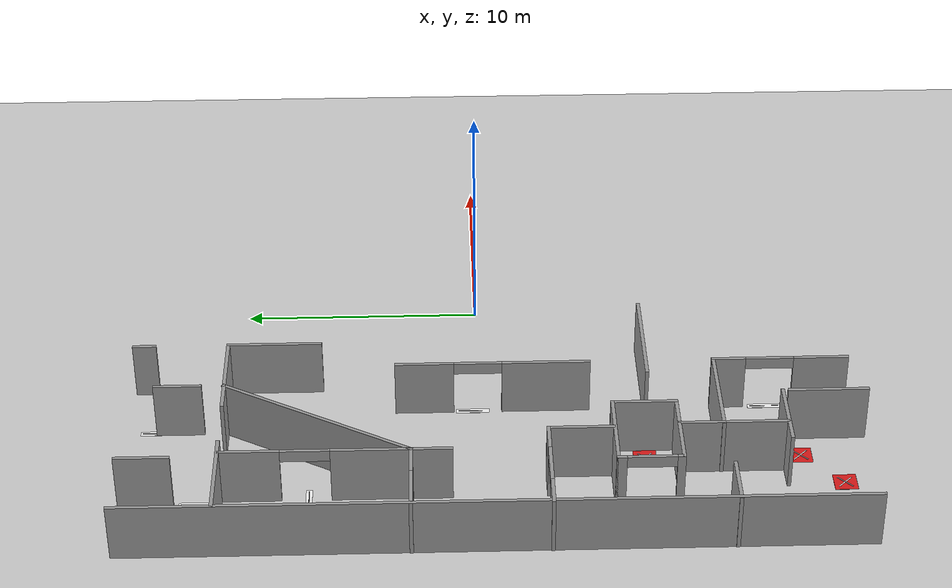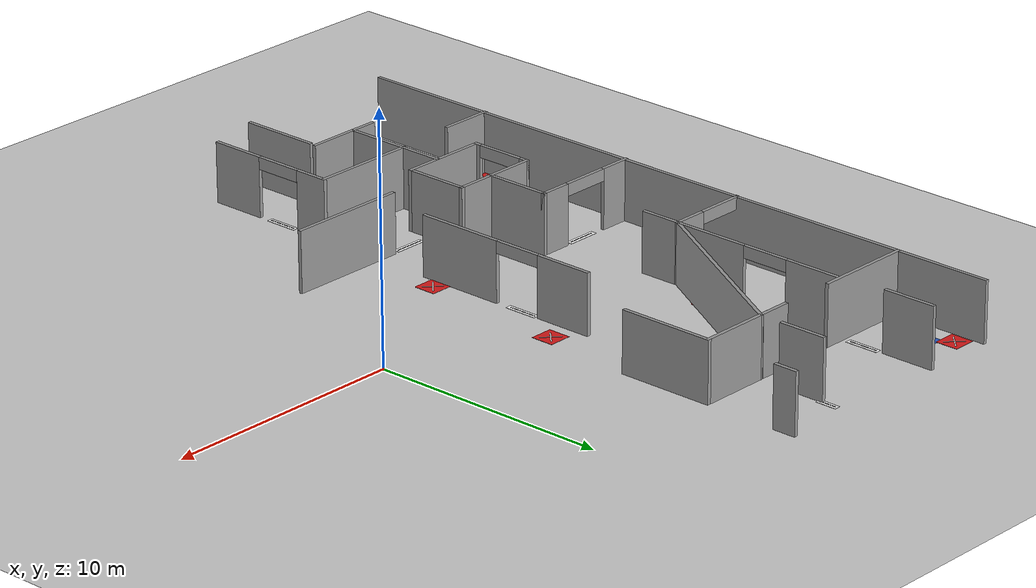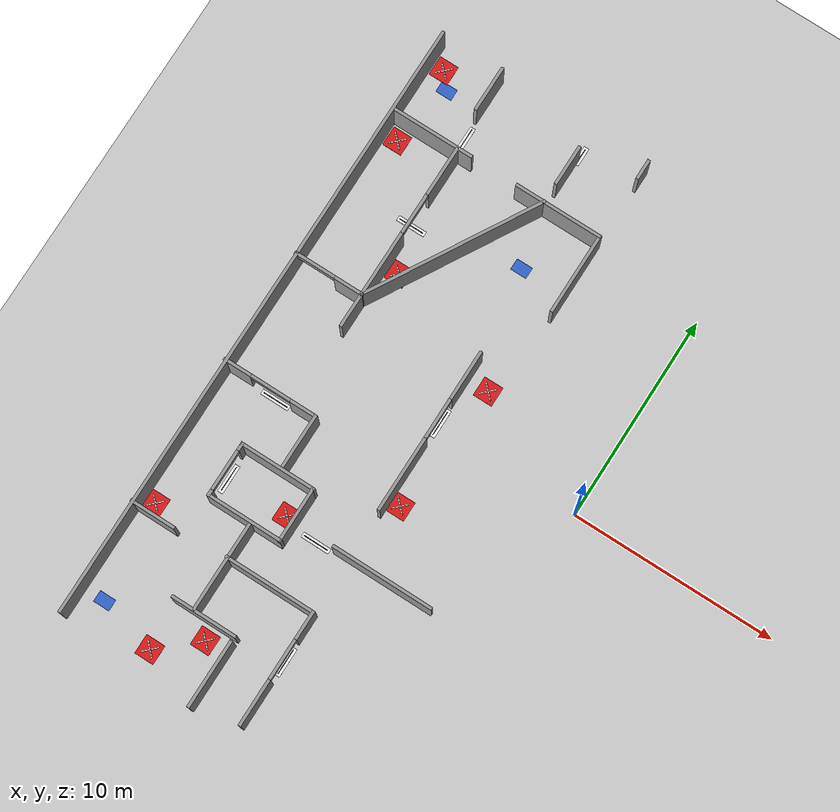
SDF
<sdf version="1.7">
 <world name="default">
  <model name="ground_plane">
   <static>1</static>
   <link name="link">
    <collision name="collision">
     <geometry><plane><normal>0 0 1</normal><size>100 100</size></plane></geometry>
     <surface><friction><ode><mu>100</mu><mu2>50</mu2></ode></friction></surface>
    </collision>
    <visual name="visual">
     <cast_shadows>0</cast_shadows>
     <geometry><plane><normal>0 0 1</normal><size>100 100</size></plane></geometry>
     <material>
      <script><uri>file://media/materials/scripts/gazebo.material</uri><name>Gazebo/Grey</name></script>
     </material>
    </visual>
   </link>
  </model>
  <model name="Untitled">
   <pose>-0.105598 -0.5029 0 0 -0 0</pose>
   <link name="Wall_10">
    <pose>-6.94082 -0.072116 0 0 -0 1.5708</pose>
    <visual name="Wall_10_Visual_0">
     <pose>-2.22777 0 1.25 0 -0 0</pose>
     <geometry><box><size>3.69446 0.15 2.5</size></box></geometry>
     <material>
      <script><uri>file://media/materials/scripts/gazebo.material</uri><name>Gazebo/Grey</name></script>
      <ambient>1 1 1 1</ambient>
     </material>
     <meta><layer>0</layer></meta>
    </visual>
    <collision name="Wall_10_Collision_0">
     <geometry><box><size>3.69446 0.15 2.5</size></box></geometry>
     <pose>-2.22777 0 1.25 0 -0 0</pose>
    </collision>
    <visual name="Wall_10_Visual_1">
     <pose>2.84723 0 1.25 0 -0 0</pose>
     <geometry><box><size>2.45554 0.15 2.5</size></box></geometry>
     <material>
      <script><uri>file://media/materials/scripts/gazebo.material</uri><name>Gazebo/Grey</name></script>
      <ambient>1 1 1 1</ambient>
     </material>
     <meta><layer>0</layer></meta>
    </visual>
    <collision name="Wall_10_Collision_1">
     <geometry><box><size>2.45554 0.15 2.5</size></box></geometry>
     <pose>2.84723 0 1.25 0 -0 0</pose>
    </collision>
    <visual name="Wall_10_Visual_2">
     <pose>0.619458 0 2.25 0 -0 0</pose>
     <geometry><box><size>2 0.15 0.5</size></box></geometry>
     <material>
      <script><uri>file://media/materials/scripts/gazebo.material</uri><name>Gazebo/Grey</name></script>
      <ambient>1 1 1 1</ambient>
     </material>
     <meta><layer>0</layer></meta>
    </visual>
    <collision name="Wall_10_Collision_2">
     <geometry><box><size>2 0.15 0.5</size></box></geometry>
     <pose>0.619458 0 2.25 0 -0 0</pose>
    </collision>
   </link>
   <link name="Wall_132">
    <collision name="Wall_132_Collision">
     <geometry><box><size>3 0.15 2.5</size></box></geometry>
     <pose>0 0 1.25 0 -0 0</pose>
    </collision>
    <visual name="Wall_132_Visual">
     <pose>0 0 1.25 0 -0 0</pose>
     <geometry><box><size>3 0.15 2.5</size></box></geometry>
     <material>
      <script><uri>file://media/materials/scripts/gazebo.material</uri><name>Gazebo/Grey</name></script>
      <ambient>1 1 1 1</ambient>
     </material>
     <meta><layer>0</layer></meta>
    </visual>
    <pose>-6.7689 10.9946 0 0 -0 0</pose>
   </link>
   <link name="Wall_133">
    <collision name="Wall_133_Collision">
     <geometry><box><size>4 0.15 2.5</size></box></geometry>
     <pose>0 0 1.25 0 -0 0</pose>
    </collision>
    <visual name="Wall_133_Visual">
     <pose>0 0 1.25 0 -0 0</pose>
     <geometry><box><size>4 0.15 2.5</size></box></geometry>
     <material>
      <script><uri>file://media/materials/scripts/gazebo.material</uri><name>Gazebo/Grey</name></script>
      <ambient>1 1 1 1</ambient>
     </material>
     <meta><layer>0</layer></meta>
    </visual>
    <pose>-5.34389 9.06962 0 0 -0 -1.5708</pose>
   </link>
   <link name="Wall_139">
    <collision name="Wall_139_Collision">
     <geometry><box><size>1 0.15 2.5</size></box></geometry>
     <pose>0 0 1.25 0 -0 0</pose>
    </collision>
    <visual name="Wall_139_Visual">
     <pose>0 0 1.25 0 -0 0</pose>
     <geometry><box><size>1 0.15 2.5</size></box></geometry>
     <material>
      <script><uri>file://media/materials/scripts/gazebo.material</uri><name>Gazebo/Grey</name></script>
      <ambient>1 1 1 1</ambient>
     </material>
     <meta><layer>0</layer></meta>
    </visual>
    <pose>-5.34389 14.5196 0 0 -0 1.5708</pose>
   </link>
   <link name="Wall_24">
    <collision name="Wall_24_Collision">
     <geometry><box><size>4.15 0.15 2.5</size></box></geometry>
     <pose>0 0 1.25 0 -0 0</pose>
    </collision>
    <visual name="Wall_24_Visual">
     <pose>0 0 1.25 0 -0 0</pose>
     <geometry><box><size>4.15 0.15 2.5</size></box></geometry>
     <material>
      <script><uri>file://media/materials/scripts/gazebo.material</uri><name>Gazebo/Grey</name></script>
      <ambient>1 1 1 1</ambient>
     </material>
     <meta><layer>0</layer></meta>
    </visual>
    <pose>-13.9408 10.9986 0 0 -0 0</pose>
   </link>
   <link name="Wall_26">
    <collision name="Wall_26_Collision">
     <geometry><box><size>1.5 0.15 2.5</size></box></geometry>
     <pose>0 0 1.25 0 -0 0</pose>
    </collision>
    <visual name="Wall_26_Visual">
     <pose>0 0 1.25 0 -0 0</pose>
     <geometry><box><size>1.5 0.15 2.5</size></box></geometry>
     <material>
      <script><uri>file://media/materials/scripts/gazebo.material</uri><name>Gazebo/Grey</name></script>
      <ambient>1 1 1 1</ambient>
     </material>
     <meta><layer>0</layer></meta>
    </visual>
    <pose>-8.8689 10.9946 0 0 -0 0</pose>
   </link>
   <link name="Wall_27">
    <collision name="Wall_27_Collision">
     <geometry><box><size>2 0.15 2.5</size></box></geometry>
     <pose>0 0 1.25 0 -0 0</pose>
    </collision>
    <visual name="Wall_27_Visual">
     <pose>0 0 1.25 0 -0 0</pose>
     <geometry><box><size>2 0.15 2.5</size></box></geometry>
     <material>
      <script><uri>file://media/materials/scripts/gazebo.material</uri><name>Gazebo/Grey</name></script>
      <ambient>1 1 1 1</ambient>
     </material>
     <meta><layer>0</layer></meta>
    </visual>
    <pose>-8.19389 12.9196 0 0 -0 1.5708</pose>
   </link>
   <link name="Wall_29">
    <collision name="Wall_29_Collision">
     <geometry><box><size>9 0.15 2.5</size></box></geometry>
     <pose>0 0 1.25 0 -0 0</pose>
    </collision>
    <visual name="Wall_29_Visual">
     <pose>0 0 1.25 0 -0 0</pose>
     <geometry><box><size>9 0.15 2.5</size></box></geometry>
     <material>
      <script><uri>file://media/materials/scripts/gazebo.material</uri><name>Gazebo/Grey</name></script>
      <ambient>1 1 1 1</ambient>
     </material>
     <meta><layer>0</layer></meta>
    </visual>
    <pose>-10.4064 7.16245 0 0 -0 -2.0944</pose>
   </link>
   <link name="Wall_33">
    <pose>-14.2939 3.33029 0 0 -0 3.14159</pose>
    <visual name="Wall_33_Visual_0">
     <pose>-1.02372 0 1.25 0 -0 0</pose>
     <geometry><box><size>1.45256 0.15 2.5</size></box></geometry>
     <material>
      <script><uri>file://media/materials/scripts/gazebo.material</uri><name>Gazebo/Grey</name></script>
      <ambient>1 1 1 1</ambient>
     </material>
     <meta><layer>0</layer></meta>
    </visual>
    <collision name="Wall_33_Collision_0">
     <geometry><box><size>1.45256 0.15 2.5</size></box></geometry>
     <pose>-1.02372 0 1.25 0 -0 0</pose>
    </collision>
    <visual name="Wall_33_Visual_1">
     <pose>1.72628 0 1.25 0 -0 0</pose>
     <geometry><box><size>0.047445 0.15 2.5</size></box></geometry>
     <material>
      <script><uri>file://media/materials/scripts/gazebo.material</uri><name>Gazebo/Grey</name></script>
      <ambient>1 1 1 1</ambient>
     </material>
     <meta><layer>0</layer></meta>
    </visual>
    <collision name="Wall_33_Collision_1">
     <geometry><box><size>0.047445 0.15 2.5</size></box></geometry>
     <pose>1.72628 0 1.25 0 -0 0</pose>
    </collision>
    <visual name="Wall_33_Visual_2">
     <pose>0.702555 0 2.25 0 -0 0</pose>
     <geometry><box><size>2 0.15 0.5</size></box></geometry>
     <material>
      <script><uri>file://media/materials/scripts/gazebo.material</uri><name>Gazebo/Grey</name></script>
      <ambient>1 1 1 1</ambient>
     </material>
     <meta><layer>0</layer></meta>
    </visual>
    <collision name="Wall_33_Collision_2">
     <geometry><box><size>2 0.15 0.5</size></box></geometry>
     <pose>0.702555 0 2.25 0 -0 0</pose>
    </collision>
   </link>
   <link name="Wall_35">
    <pose>-12.6189 7.13029 0 0 -0 1.5708</pose>
    <visual name="Wall_35_Visual_0">
     <pose>-2.23626 0 1.25 0 -0 0</pose>
     <geometry><box><size>3.27749 0.15 2.5</size></box></geometry>
     <material>
      <script><uri>file://media/materials/scripts/gazebo.material</uri><name>Gazebo/Grey</name></script>
      <ambient>1 1 1 1</ambient>
     </material>
     <meta><layer>0</layer></meta>
    </visual>
    <collision name="Wall_35_Collision_0">
     <geometry><box><size>3.27749 0.15 2.5</size></box></geometry>
     <pose>-2.23626 0 1.25 0 -0 0</pose>
    </collision>
    <visual name="Wall_35_Visual_1">
     <pose>2.63874 0 1.25 0 -0 0</pose>
     <geometry><box><size>2.47251 0.15 2.5</size></box></geometry>
     <material>
      <script><uri>file://media/materials/scripts/gazebo.material</uri><name>Gazebo/Grey</name></script>
      <ambient>1 1 1 1</ambient>
     </material>
     <meta><layer>0</layer></meta>
    </visual>
    <collision name="Wall_35_Collision_1">
     <geometry><box><size>2.47251 0.15 2.5</size></box></geometry>
     <pose>2.63874 0 1.25 0 -0 0</pose>
    </collision>
    <visual name="Wall_35_Visual_2">
     <pose>0.402489 0 2.25 0 -0 0</pose>
     <geometry><box><size>2 0.15 0.5</size></box></geometry>
     <material>
      <script><uri>file://media/materials/scripts/gazebo.material</uri><name>Gazebo/Grey</name></script>
      <ambient>1 1 1 1</ambient>
     </material>
     <meta><layer>0</layer></meta>
    </visual>
    <collision name="Wall_35_Collision_2">
     <geometry><box><size>2 0.15 0.5</size></box></geometry>
     <pose>0.402489 0 2.25 0 -0 0</pose>
    </collision>
   </link>
   <link name="Wall_37">
    <collision name="Wall_37_Collision">
     <geometry><box><size>2.25 0.15 2.5</size></box></geometry>
     <pose>0 0 1.25 0 -0 0</pose>
    </collision>
    <visual name="Wall_37_Visual">
     <pose>0 0 1.25 0 -0 0</pose>
     <geometry><box><size>2.25 0.15 2.5</size></box></geometry>
     <material>
      <script><uri>file://media/materials/scripts/gazebo.material</uri><name>Gazebo/Grey</name></script>
      <ambient>1 1 1 1</ambient>
     </material>
     <meta><layer>0</layer></meta>
    </visual>
    <pose>-12.8901 13.9642 0 0 -0 -1.5708</pose>
   </link>
   <link name="Wall_39">
    <collision name="Wall_39_Collision">
     <geometry><box><size>1.75 0.15 2.5</size></box></geometry>
     <pose>0 0 1.25 0 -0 0</pose>
    </collision>
    <visual name="Wall_39_Visual">
     <pose>0 0 1.25 0 -0 0</pose>
     <geometry><box><size>1.75 0.15 2.5</size></box></geometry>
     <material>
      <script><uri>file://media/materials/scripts/gazebo.material</uri><name>Gazebo/Grey</name></script>
      <ambient>1 1 1 1</ambient>
     </material>
     <meta><layer>0</layer></meta>
    </visual>
    <pose>-12.6189 2.53029 0 0 -0 -1.5708</pose>
   </link>
   <link name="Wall_4">
    <collision name="Wall_4_Collision">
     <geometry><box><size>30.15 0.15 2.5</size></box></geometry>
     <pose>0 0 1.25 0 -0 0</pose>
    </collision>
    <visual name="Wall_4_Visual">
     <pose>0 0 1.25 0 -0 0</pose>
     <geometry><box><size>30.15 0.15 2.5</size></box></geometry>
     <material>
      <script><uri>file://media/materials/scripts/gazebo.material</uri><name>Gazebo/Grey</name></script>
      <ambient>1 1 1 1</ambient>
     </material>
     <meta><layer>0</layer></meta>
    </visual>
    <pose>-15.9408 -0.001359 0 0 -0 1.5708</pose>
   </link>
   <link name="Wall_41">
    <pose>-13.6967 -2.19975 0 0 -0 0</pose>
    <visual name="Wall_41_Visual_0">
     <pose>-1.67653 0 1.25 0 -0 0</pose>
     <geometry><box><size>1.39694 0.15 2.5</size></box></geometry>
     <material>
      <script><uri>file://media/materials/scripts/gazebo.material</uri><name>Gazebo/Grey</name></script>
      <ambient>1 1 1 1</ambient>
     </material>
     <meta><layer>0</layer></meta>
    </visual>
    <collision name="Wall_41_Collision_0">
     <geometry><box><size>1.39694 0.15 2.5</size></box></geometry>
     <pose>-1.67653 0 1.25 0 -0 0</pose>
    </collision>
    <visual name="Wall_41_Visual_1">
     <pose>1.69847 0 1.25 0 -0 0</pose>
     <geometry><box><size>1.35306 0.15 2.5</size></box></geometry>
     <material>
      <script><uri>file://media/materials/scripts/gazebo.material</uri><name>Gazebo/Grey</name></script>
      <ambient>1 1 1 1</ambient>
     </material>
     <meta><layer>0</layer></meta>
    </visual>
    <collision name="Wall_41_Collision_1">
     <geometry><box><size>1.35306 0.15 2.5</size></box></geometry>
     <pose>1.69847 0 1.25 0 -0 0</pose>
    </collision>
    <visual name="Wall_41_Visual_2">
     <pose>0.021943 0 2.25 0 -0 0</pose>
     <geometry><box><size>2 0.15 0.5</size></box></geometry>
     <material>
      <script><uri>file://media/materials/scripts/gazebo.material</uri><name>Gazebo/Grey</name></script>
      <ambient>1 1 1 1</ambient>
     </material>
     <meta><layer>0</layer></meta>
    </visual>
    <collision name="Wall_41_Collision_2">
     <geometry><box><size>2 0.15 0.5</size></box></geometry>
     <pose>0.021943 0 2.25 0 -0 0</pose>
    </collision>
   </link>
   <link name="Wall_45">
    <pose>-13.3751 -6.17488 0 0 -0 -1.5708</pose>
    <visual name="Wall_45_Visual_0">
     <pose>-1.16612 0 1.25 0 -0 0</pose>
     <geometry><box><size>0.417771 0.15 2.5</size></box></geometry>
     <material>
      <script><uri>file://media/materials/scripts/gazebo.material</uri><name>Gazebo/Grey</name></script>
      <ambient>1 1 1 1</ambient>
     </material>
     <meta><layer>0</layer></meta>
    </visual>
    <collision name="Wall_45_Collision_0">
     <geometry><box><size>0.417771 0.15 2.5</size></box></geometry>
     <pose>-1.16612 0 1.25 0 -0 0</pose>
    </collision>
    <visual name="Wall_45_Visual_1">
     <pose>1.20888 0 1.25 0 -0 0</pose>
     <geometry><box><size>0.332229 0.15 2.5</size></box></geometry>
     <material>
      <script><uri>file://media/materials/scripts/gazebo.material</uri><name>Gazebo/Grey</name></script>
      <ambient>1 1 1 1</ambient>
     </material>
     <meta><layer>0</layer></meta>
    </visual>
    <collision name="Wall_45_Collision_1">
     <geometry><box><size>0.332229 0.15 2.5</size></box></geometry>
     <pose>1.20888 0 1.25 0 -0 0</pose>
    </collision>
    <visual name="Wall_45_Visual_2">
     <pose>0.042771 0 2.25 0 -0 0</pose>
     <geometry><box><size>2 0.15 0.5</size></box></geometry>
     <material>
      <script><uri>file://media/materials/scripts/gazebo.material</uri><name>Gazebo/Grey</name></script>
      <ambient>1 1 1 1</ambient>
     </material>
     <meta><layer>0</layer></meta>
    </visual>
    <collision name="Wall_45_Collision_2">
     <geometry><box><size>2 0.15 0.5</size></box></geometry>
     <pose>0.042771 0 2.25 0 -0 0</pose>
    </collision>
   </link>
   <link name="Wall_46">
    <collision name="Wall_46_Collision">
     <geometry><box><size>3.75 0.15 2.5</size></box></geometry>
     <pose>0 0 1.25 0 -0 0</pose>
    </collision>
    <visual name="Wall_46_Visual">
     <pose>0 0 1.25 0 -0 0</pose>
     <geometry><box><size>3.75 0.15 2.5</size></box></geometry>
     <material>
      <script><uri>file://media/materials/scripts/gazebo.material</uri><name>Gazebo/Grey</name></script>
      <ambient>1 1 1 1</ambient>
     </material>
     <meta><layer>0</layer></meta>
    </visual>
    <pose>-11.5751 -7.47488 0 0 -0 0</pose>
   </link>
   <link name="Wall_47">
    <collision name="Wall_47_Collision">
     <geometry><box><size>2.75 0.15 2.5</size></box></geometry>
     <pose>0 0 1.25 0 -0 0</pose>
    </collision>
    <visual name="Wall_47_Visual">
     <pose>0 0 1.25 0 -0 0</pose>
     <geometry><box><size>2.75 0.15 2.5</size></box></geometry>
     <material>
      <script><uri>file://media/materials/scripts/gazebo.material</uri><name>Gazebo/Grey</name></script>
      <ambient>1 1 1 1</ambient>
     </material>
     <meta><layer>0</layer></meta>
    </visual>
    <pose>-9.77512 -6.17488 0 0 -0 1.5708</pose>
   </link>
   <link name="Wall_48">
    <collision name="Wall_48_Collision">
     <geometry><box><size>3.75 0.15 2.5</size></box></geometry>
     <pose>0 0 1.25 0 -0 0</pose>
    </collision>
    <visual name="Wall_48_Visual">
     <pose>0 0 1.25 0 -0 0</pose>
     <geometry><box><size>3.75 0.15 2.5</size></box></geometry>
     <material>
      <script><uri>file://media/materials/scripts/gazebo.material</uri><name>Gazebo/Grey</name></script>
      <ambient>1 1 1 1</ambient>
     </material>
     <meta><layer>0</layer></meta>
    </visual>
    <pose>-11.5751 -4.87488 0 0 -0 3.14159</pose>
   </link>
   <link name="Wall_50">
    <collision name="Wall_50_Collision">
     <geometry><box><size>2.75 0.15 2.5</size></box></geometry>
     <pose>0 0 1.25 0 -0 0</pose>
    </collision>
    <visual name="Wall_50_Visual">
     <pose>0 0 1.25 0 -0 0</pose>
     <geometry><box><size>2.75 0.15 2.5</size></box></geometry>
     <material>
      <script><uri>file://media/materials/scripts/gazebo.material</uri><name>Gazebo/Grey</name></script>
      <ambient>1 1 1 1</ambient>
     </material>
     <meta><layer>0</layer></meta>
    </visual>
    <pose>-11.3967 -3.49975 0 0 -0 -1.5708</pose>
   </link>
   <link name="Wall_52">
    <collision name="Wall_52_Collision">
     <geometry><box><size>4.5 0.15 2.5</size></box></geometry>
     <pose>0 0 1.25 0 -0 0</pose>
    </collision>
    <visual name="Wall_52_Visual">
     <pose>0 0 1.25 0 -0 0</pose>
     <geometry><box><size>4.5 0.15 2.5</size></box></geometry>
     <material>
      <script><uri>file://media/materials/scripts/gazebo.material</uri><name>Gazebo/Grey</name></script>
      <ambient>1 1 1 1</ambient>
     </material>
     <meta><layer>0</layer></meta>
    </visual>
    <pose>-11.2228 -9.68808 0 0 -0 -1.5708</pose>
   </link>
   <link name="Wall_56">
    <collision name="Wall_56_Collision">
     <geometry><box><size>2.25 0.15 2.5</size></box></geometry>
     <pose>0 0 1.25 0 -0 0</pose>
    </collision>
    <visual name="Wall_56_Visual">
     <pose>0 0 1.25 0 -0 0</pose>
     <geometry><box><size>2.25 0.15 2.5</size></box></geometry>
     <material>
      <script><uri>file://media/materials/scripts/gazebo.material</uri><name>Gazebo/Grey</name></script>
      <ambient>1 1 1 1</ambient>
     </material>
     <meta><layer>0</layer></meta>
    </visual>
    <pose>-14.9286 -9.44755 0 0 -0 0</pose>
   </link>
   <link name="Wall_58">
    <collision name="Wall_58_Collision">
     <geometry><box><size>3.25 0.15 2.5</size></box></geometry>
     <pose>0 0 1.25 0 -0 0</pose>
    </collision>
    <visual name="Wall_58_Visual">
     <pose>0 0 1.25 0 -0 0</pose>
     <geometry><box><size>3.25 0.15 2.5</size></box></geometry>
     <material>
      <script><uri>file://media/materials/scripts/gazebo.material</uri><name>Gazebo/Grey</name></script>
      <ambient>1 1 1 1</ambient>
     </material>
     <meta><layer>0</layer></meta>
    </visual>
    <pose>-10.7067 -11.9133 0 0 -0 0</pose>
   </link>
   <link name="Wall_59">
    <collision name="Wall_59_Collision">
     <geometry><box><size>3.34305 0.15 2.5</size></box></geometry>
     <pose>0 0 1.25 0 -0 0</pose>
    </collision>
    <visual name="Wall_59_Visual">
     <pose>0 0 1.25 0 -0 0</pose>
     <geometry><box><size>3.34305 0.15 2.5</size></box></geometry>
     <material>
      <script><uri>file://media/materials/scripts/gazebo.material</uri><name>Gazebo/Grey</name></script>
      <ambient>1 1 1 1</ambient>
     </material>
     <meta><layer>0</layer></meta>
    </visual>
    <pose>-9.15666 -13.8001 0 0 -0 -1.5708</pose>
   </link>
   <link name="Wall_70">
    <collision name="Wall_70_Collision">
     <geometry><box><size>4.5 0.15 2.5</size></box></geometry>
     <pose>0 0 1.25 0 -0 0</pose>
    </collision>
    <visual name="Wall_70_Visual">
     <pose>0 0 1.25 0 -0 0</pose>
     <geometry><box><size>4.5 0.15 2.5</size></box></geometry>
     <material>
      <script><uri>file://media/materials/scripts/gazebo.material</uri><name>Gazebo/Grey</name></script>
      <ambient>1 1 1 1</ambient>
     </material>
     <meta><layer>0</layer></meta>
    </visual>
    <pose>-9.09041 -9.27813 0 0 -0 0</pose>
   </link>
   <link name="Wall_71">
    <pose>-6.91541 -12.0781 0 0 -0 -1.5708</pose>
    <visual name="Wall_71_Visual_0">
     <pose>-2.15565 0 1.25 0 -0 0</pose>
     <geometry><box><size>1.43869 0.15 2.5</size></box></geometry>
     <material>
      <script><uri>file://media/materials/scripts/gazebo.material</uri><name>Gazebo/Grey</name></script>
      <ambient>1 1 1 1</ambient>
     </material>
     <meta><layer>0</layer></meta>
    </visual>
    <collision name="Wall_71_Collision_0">
     <geometry><box><size>1.43869 0.15 2.5</size></box></geometry>
     <pose>-2.15565 0 1.25 0 -0 0</pose>
    </collision>
    <visual name="Wall_71_Visual_1">
     <pose>1.71934 0 1.25 0 -0 0</pose>
     <geometry><box><size>2.31131 0.15 2.5</size></box></geometry>
     <material>
      <script><uri>file://media/materials/scripts/gazebo.material</uri><name>Gazebo/Grey</name></script>
      <ambient>1 1 1 1</ambient>
     </material>
     <meta><layer>0</layer></meta>
    </visual>
    <collision name="Wall_71_Collision_1">
     <geometry><box><size>2.31131 0.15 2.5</size></box></geometry>
     <pose>1.71934 0 1.25 0 -0 0</pose>
    </collision>
    <visual name="Wall_71_Visual_2">
     <pose>-0.436311 0 2.25 0 -0 0</pose>
     <geometry><box><size>2 0.15 0.5</size></box></geometry>
     <material>
      <script><uri>file://media/materials/scripts/gazebo.material</uri><name>Gazebo/Grey</name></script>
      <ambient>1 1 1 1</ambient>
     </material>
     <meta><layer>0</layer></meta>
    </visual>
    <collision name="Wall_71_Collision_2">
     <geometry><box><size>2 0.15 0.5</size></box></geometry>
     <pose>-0.436311 0 2.25 0 -0 0</pose>
    </collision>
   </link>
   <link name="Wall_75">
    <collision name="Wall_75_Collision">
     <geometry><box><size>5 0.15 2.5</size></box></geometry>
     <pose>0 0 1.25 0 -0 0</pose>
    </collision>
    <visual name="Wall_75_Visual">
     <pose>0 0 1.25 0 -0 0</pose>
     <geometry><box><size>5 0.15 2.5</size></box></geometry>
     <material>
      <script><uri>file://media/materials/scripts/gazebo.material</uri><name>Gazebo/Grey</name></script>
      <ambient>1 1 1 1</ambient>
     </material>
     <meta><layer>0</layer></meta>
    </visual>
    <pose>-5.258 -6.45578 0 0 -0 3.14159</pose>
   </link>
   <static>1</static>
  </model>
  <model name="semantic_marker_door_0">
   <static>true</static>
   <pose>-12.95 11.45 0 0 0 1.5708</pose>
   <link name="link">
    <visual name="door_patch">
     <pose>0 0 0.005 0 0 0</pose>
     <geometry><box><size>1.40 0.26 0.01</size></box></geometry>
     <material><ambient>0.96 0.96 0.96 1</ambient><diffuse>0.96 0.96 0.96 1</diffuse></material>
    </visual>
    <visual name="door_center_line">
     <pose>0 0 0.011 0 0 0</pose>
     <geometry><box><size>1.22 0.03 0.005</size></box></geometry>
     <material><ambient>0.15 0.15 0.15 1</ambient><diffuse>0.15 0.15 0.15 1</diffuse></material>
    </visual>
   </link>
  </model>
  <model name="semantic_marker_door_1">
   <static>true</static>
   <pose>-8.25 13.65 0 0 0 1.5708</pose>
   <link name="link">
    <visual name="door_patch">
     <pose>0 0 0.005 0 0 0</pose>
     <geometry><box><size>0.90 0.26 0.01</size></box></geometry>
     <material><ambient>0.96 0.96 0.96 1</ambient><diffuse>0.96 0.96 0.96 1</diffuse></material>
    </visual>
    <visual name="door_center_line">
     <pose>0 0 0.011 0 0 0</pose>
     <geometry><box><size>0.72 0.03 0.005</size></box></geometry>
     <material><ambient>0.15 0.15 0.15 1</ambient><diffuse>0.15 0.15 0.15 1</diffuse></material>
    </visual>
   </link>
  </model>
  <model name="semantic_marker_door_6">
   <static>true</static>
   <pose>-12.85 6.95 0 0 0 0.0000</pose>
   <link name="link">
    <visual name="door_patch">
     <pose>0 0 0.005 0 0 0</pose>
     <geometry><box><size>1.40 0.26 0.01</size></box></geometry>
     <material><ambient>0.96 0.96 0.96 1</ambient><diffuse>0.96 0.96 0.96 1</diffuse></material>
    </visual>
    <visual name="door_center_line">
     <pose>0 0 0.011 0 0 0</pose>
     <geometry><box><size>1.22 0.03 0.005</size></box></geometry>
     <material><ambient>0.15 0.15 0.15 1</ambient><diffuse>0.15 0.15 0.15 1</diffuse></material>
    </visual>
   </link>
  </model>
  <model name="semantic_marker_door_7">
   <static>true</static>
   <pose>-13.65 -2.75 0 0 0 0.0000</pose>
   <link name="link">
    <visual name="door_patch">
     <pose>0 0 0.005 0 0 0</pose>
     <geometry><box><size>1.40 0.26 0.01</size></box></geometry>
     <material><ambient>0.96 0.96 0.96 1</ambient><diffuse>0.96 0.96 0.96 1</diffuse></material>
    </visual>
    <visual name="door_center_line">
     <pose>0 0 0.011 0 0 0</pose>
     <geometry><box><size>1.22 0.03 0.005</size></box></geometry>
     <material><ambient>0.15 0.15 0.15 1</ambient><diffuse>0.15 0.15 0.15 1</diffuse></material>
    </visual>
   </link>
  </model>
  <model name="semantic_marker_door_8">
   <static>true</static>
   <pose>-13.45 -6.75 0 0 0 1.5708</pose>
   <link name="link">
    <visual name="door_patch">
     <pose>0 0 0.005 0 0 0</pose>
     <geometry><box><size>1.40 0.26 0.01</size></box></geometry>
     <material><ambient>0.96 0.96 0.96 1</ambient><diffuse>0.96 0.96 0.96 1</diffuse></material>
    </visual>
    <visual name="door_center_line">
     <pose>0 0 0.011 0 0 0</pose>
     <geometry><box><size>1.22 0.03 0.005</size></box></geometry>
     <material><ambient>0.15 0.15 0.15 1</ambient><diffuse>0.15 0.15 0.15 1</diffuse></material>
    </visual>
   </link>
  </model>
  <model name="semantic_marker_door_9">
   <static>true</static>
   <pose>-8.75 -7.05 0 0 0 0.0000</pose>
   <link name="link">
    <visual name="door_patch">
     <pose>0 0 0.005 0 0 0</pose>
     <geometry><box><size>1.40 0.26 0.01</size></box></geometry>
     <material><ambient>0.96 0.96 0.96 1</ambient><diffuse>0.96 0.96 0.96 1</diffuse></material>
    </visual>
    <visual name="door_center_line">
     <pose>0 0 0.011 0 0 0</pose>
     <geometry><box><size>1.22 0.03 0.005</size></box></geometry>
     <material><ambient>0.15 0.15 0.15 1</ambient><diffuse>0.15 0.15 0.15 1</diffuse></material>
    </visual>
   </link>
  </model>
  <model name="semantic_marker_door_10">
   <static>true</static>
   <pose>-7.05 0.25 0 0 0 1.5708</pose>
   <link name="link">
    <visual name="door_patch">
     <pose>0 0 0.005 0 0 0</pose>
     <geometry><box><size>1.40 0.26 0.01</size></box></geometry>
     <material><ambient>0.96 0.96 0.96 1</ambient><diffuse>0.96 0.96 0.96 1</diffuse></material>
    </visual>
    <visual name="door_center_line">
     <pose>0 0 0.011 0 0 0</pose>
     <geometry><box><size>1.22 0.03 0.005</size></box></geometry>
     <material><ambient>0.15 0.15 0.15 1</ambient><diffuse>0.15 0.15 0.15 1</diffuse></material>
    </visual>
   </link>
  </model>
  <model name="semantic_marker_door_16">
   <static>true</static>
   <pose>-7.05 -12.05 0 0 0 1.5708</pose>
   <link name="link">
    <visual name="door_patch">
     <pose>0 0 0.005 0 0 0</pose>
     <geometry><box><size>1.40 0.26 0.01</size></box></geometry>
     <material><ambient>0.96 0.96 0.96 1</ambient><diffuse>0.96 0.96 0.96 1</diffuse></material>
    </visual>
    <visual name="door_center_line">
     <pose>0 0 0.011 0 0 0</pose>
     <geometry><box><size>1.22 0.03 0.005</size></box></geometry>
     <material><ambient>0.15 0.15 0.15 1</ambient><diffuse>0.15 0.15 0.15 1</diffuse></material>
    </visual>
   </link>
  </model>
  <model name="semantic_marker_dead_end_0">
   <static>true</static>
   <pose>-12.15 4.85 0 0 0 0.0000</pose>
   <link name="link">
    <visual name="dead_end_patch">
     <pose>0 0 0.005 0 0 0</pose>
     <geometry><box><size>0.95 0.95 0.01</size></box></geometry>
     <material><ambient>0.85 0.10 0.10 1</ambient><diffuse>0.85 0.10 0.10 1</diffuse></material>
    </visual>
    <visual name="cross_bar_a">
     <pose>0 0 0.011 0 0 0.78</pose>
     <geometry><box><size>0.83 0.05 0.005</size></box></geometry>
     <material><ambient>0.98 0.98 0.98 1</ambient><diffuse>0.98 0.98 0.98 1</diffuse></material>
    </visual>
    <visual name="cross_bar_b">
     <pose>0 0 0.011 0 0 -0.78</pose>
     <geometry><box><size>0.83 0.05 0.005</size></box></geometry>
     <material><ambient>0.98 0.98 0.98 1</ambient><diffuse>0.98 0.98 0.98 1</diffuse></material>
    </visual>
   </link>
  </model>
  <model name="semantic_marker_dead_end_1">
   <static>true</static>
   <pose>-15.45 13.65 0 0 0 0.0000</pose>
   <link name="link">
    <visual name="dead_end_patch">
     <pose>0 0 0.005 0 0 0</pose>
     <geometry><box><size>0.95 0.95 0.01</size></box></geometry>
     <material><ambient>0.85 0.10 0.10 1</ambient><diffuse>0.85 0.10 0.10 1</diffuse></material>
    </visual>
    <visual name="cross_bar_a">
     <pose>0 0 0.011 0 0 0.78</pose>
     <geometry><box><size>0.83 0.05 0.005</size></box></geometry>
     <material><ambient>0.98 0.98 0.98 1</ambient><diffuse>0.98 0.98 0.98 1</diffuse></material>
    </visual>
    <visual name="cross_bar_b">
     <pose>0 0 0.011 0 0 -0.78</pose>
     <geometry><box><size>0.83 0.05 0.005</size></box></geometry>
     <material><ambient>0.98 0.98 0.98 1</ambient><diffuse>0.98 0.98 0.98 1</diffuse></material>
    </visual>
   </link>
  </model>
  <model name="semantic_marker_dead_end_2">
   <static>true</static>
   <pose>-10.45 -13.15 0 0 0 0.0000</pose>
   <link name="link">
    <visual name="dead_end_patch">
     <pose>0 0 0.005 0 0 0</pose>
     <geometry><box><size>0.95 0.95 0.01</size></box></geometry>
     <material><ambient>0.85 0.10 0.10 1</ambient><diffuse>0.85 0.10 0.10 1</diffuse></material>
    </visual>
    <visual name="cross_bar_a">
     <pose>0 0 0.011 0 0 0.78</pose>
     <geometry><box><size>0.83 0.05 0.005</size></box></geometry>
     <material><ambient>0.98 0.98 0.98 1</ambient><diffuse>0.98 0.98 0.98 1</diffuse></material>
    </visual>
    <visual name="cross_bar_b">
     <pose>0 0 0.011 0 0 -0.78</pose>
     <geometry><box><size>0.83 0.05 0.005</size></box></geometry>
     <material><ambient>0.98 0.98 0.98 1</ambient><diffuse>0.98 0.98 0.98 1</diffuse></material>
    </visual>
   </link>
  </model>
  <model name="semantic_marker_dead_end_3">
   <static>true</static>
   <pose>-12.25 -14.75 0 0 0 0.0000</pose>
   <link name="link">
    <visual name="dead_end_patch">
     <pose>0 0 0.005 0 0 0</pose>
     <geometry><box><size>0.95 0.95 0.01</size></box></geometry>
     <material><ambient>0.85 0.10 0.10 1</ambient><diffuse>0.85 0.10 0.10 1</diffuse></material>
    </visual>
    <visual name="cross_bar_a">
     <pose>0 0 0.011 0 0 0.78</pose>
     <geometry><box><size>0.83 0.05 0.005</size></box></geometry>
     <material><ambient>0.98 0.98 0.98 1</ambient><diffuse>0.98 0.98 0.98 1</diffuse></material>
    </visual>
    <visual name="cross_bar_b">
     <pose>0 0 0.011 0 0 -0.78</pose>
     <geometry><box><size>0.83 0.05 0.005</size></box></geometry>
     <material><ambient>0.98 0.98 0.98 1</ambient><diffuse>0.98 0.98 0.98 1</diffuse></material>
    </visual>
   </link>
  </model>
  <model name="semantic_marker_dead_end_19">
   <static>true</static>
   <pose>-15.45 9.85 0 0 0 0.0000</pose>
   <link name="link">
    <visual name="dead_end_patch">
     <pose>0 0 0.005 0 0 0</pose>
     <geometry><box><size>0.95 0.95 0.01</size></box></geometry>
     <material><ambient>0.85 0.10 0.10 1</ambient><diffuse>0.85 0.10 0.10 1</diffuse></material>
    </visual>
    <visual name="cross_bar_a">
     <pose>0 0 0.011 0 0 0.78</pose>
     <geometry><box><size>0.83 0.05 0.005</size></box></geometry>
     <material><ambient>0.98 0.98 0.98 1</ambient><diffuse>0.98 0.98 0.98 1</diffuse></material>
    </visual>
    <visual name="cross_bar_b">
     <pose>0 0 0.011 0 0 -0.78</pose>
     <geometry><box><size>0.83 0.05 0.005</size></box></geometry>
     <material><ambient>0.98 0.98 0.98 1</ambient><diffuse>0.98 0.98 0.98 1</diffuse></material>
    </visual>
   </link>
  </model>
  <model name="semantic_marker_dead_end_20">
   <static>true</static>
   <pose>-6.55 -3.75 0 0 0 0.0000</pose>
   <link name="link">
    <visual name="dead_end_patch">
     <pose>0 0 0.005 0 0 0</pose>
     <geometry><box><size>0.95 0.95 0.01</size></box></geometry>
     <material><ambient>0.85 0.10 0.10 1</ambient><diffuse>0.85 0.10 0.10 1</diffuse></material>
    </visual>
    <visual name="cross_bar_a">
     <pose>0 0 0.011 0 0 0.78</pose>
     <geometry><box><size>0.83 0.05 0.005</size></box></geometry>
     <material><ambient>0.98 0.98 0.98 1</ambient><diffuse>0.98 0.98 0.98 1</diffuse></material>
    </visual>
    <visual name="cross_bar_b">
     <pose>0 0 0.011 0 0 -0.78</pose>
     <geometry><box><size>0.83 0.05 0.005</size></box></geometry>
     <material><ambient>0.98 0.98 0.98 1</ambient><diffuse>0.98 0.98 0.98 1</diffuse></material>
    </visual>
   </link>
  </model>
  <model name="semantic_marker_dead_end_23">
   <static>true</static>
   <pose>-6.05 2.55 0 0 0 0.0000</pose>
   <link name="link">
    <visual name="dead_end_patch">
     <pose>0 0 0.005 0 0 0</pose>
     <geometry><box><size>0.95 0.95 0.01</size></box></geometry>
     <material><ambient>0.85 0.10 0.10 1</ambient><diffuse>0.85 0.10 0.10 1</diffuse></material>
    </visual>
    <visual name="cross_bar_a">
     <pose>0 0 0.011 0 0 0.78</pose>
     <geometry><box><size>0.83 0.05 0.005</size></box></geometry>
     <material><ambient>0.98 0.98 0.98 1</ambient><diffuse>0.98 0.98 0.98 1</diffuse></material>
    </visual>
    <visual name="cross_bar_b">
     <pose>0 0 0.011 0 0 -0.78</pose>
     <geometry><box><size>0.83 0.05 0.005</size></box></geometry>
     <material><ambient>0.98 0.98 0.98 1</ambient><diffuse>0.98 0.98 0.98 1</diffuse></material>
    </visual>
   </link>
  </model>
  <model name="semantic_marker_dead_end_24">
   <static>true</static>
   <pose>-10.45 -6.75 0 0 0 0.0000</pose>
   <link name="link">
    <visual name="dead_end_patch">
     <pose>0 0 0.005 0 0 0</pose>
     <geometry><box><size>0.95 0.95 0.01</size></box></geometry>
     <material><ambient>0.85 0.10 0.10 1</ambient><diffuse>0.85 0.10 0.10 1</diffuse></material>
    </visual>
    <visual name="cross_bar_a">
     <pose>0 0 0.011 0 0 0.78</pose>
     <geometry><box><size>0.83 0.05 0.005</size></box></geometry>
     <material><ambient>0.98 0.98 0.98 1</ambient><diffuse>0.98 0.98 0.98 1</diffuse></material>
    </visual>
    <visual name="cross_bar_b">
     <pose>0 0 0.011 0 0 -0.78</pose>
     <geometry><box><size>0.83 0.05 0.005</size></box></geometry>
     <material><ambient>0.98 0.98 0.98 1</ambient><diffuse>0.98 0.98 0.98 1</diffuse></material>
    </visual>
   </link>
  </model>
  <model name="semantic_marker_dead_end_25">
   <static>true</static>
   <pose>-15.55 -9.35 0 0 0 0.0000</pose>
   <link name="link">
    <visual name="dead_end_patch">
     <pose>0 0 0.005 0 0 0</pose>
     <geometry><box><size>0.95 0.95 0.01</size></box></geometry>
     <material><ambient>0.85 0.10 0.10 1</ambient><diffuse>0.85 0.10 0.10 1</diffuse></material>
    </visual>
    <visual name="cross_bar_a">
     <pose>0 0 0.011 0 0 0.78</pose>
     <geometry><box><size>0.83 0.05 0.005</size></box></geometry>
     <material><ambient>0.98 0.98 0.98 1</ambient><diffuse>0.98 0.98 0.98 1</diffuse></material>
    </visual>
    <visual name="cross_bar_b">
     <pose>0 0 0.011 0 0 -0.78</pose>
     <geometry><box><size>0.83 0.05 0.005</size></box></geometry>
     <material><ambient>0.98 0.98 0.98 1</ambient><diffuse>0.98 0.98 0.98 1</diffuse></material>
    </visual>
   </link>
  </model>
  <model name="semantic_marker_water_2">
   <static>true</static>
   <pose>-15.05 -14.05 0 0 0 0.0000</pose>
   <link name="link">
    <visual name="water_patch">
     <pose>0 0 0.005 0 0 0</pose>
     <geometry><box><size>0.80 0.55 0.01</size></box></geometry>
     <material>
      <ambient>0.10 0.35 0.85 0.82</ambient>
      <diffuse>0.10 0.35 0.85 0.82</diffuse>
      <specular>0.95 0.95 0.95 1</specular>
     </material>
    </visual>
   </link>
  </model>
  <model name="semantic_marker_water_3">
   <static>true</static>
   <pose>-7.75 7.95 0 0 0 0.0000</pose>
   <link name="link">
    <visual name="water_patch">
     <pose>0 0 0.005 0 0 0</pose>
     <geometry><box><size>0.80 0.55 0.01</size></box></geometry>
     <material>
      <ambient>0.10 0.35 0.85 0.82</ambient>
      <diffuse>0.10 0.35 0.85 0.82</diffuse>
      <specular>0.95 0.95 0.95 1</specular>
     </material>
    </visual>
   </link>
  </model>
  <model name="semantic_marker_water_5">
   <static>true</static>
   <pose>-14.85 12.95 0 0 0 0.0000</pose>
   <link name="link">
    <visual name="water_patch">
     <pose>0 0 0.005 0 0 0</pose>
     <geometry><box><size>0.80 0.55 0.01</size></box></geometry>
     <material>
      <ambient>0.10 0.35 0.85 0.82</ambient>
      <diffuse>0.10 0.35 0.85 0.82</diffuse>
      <specular>0.95 0.95 0.95 1</specular>
     </material>
    </visual>
   </link>
  </model>
 </world>
</sdf>
